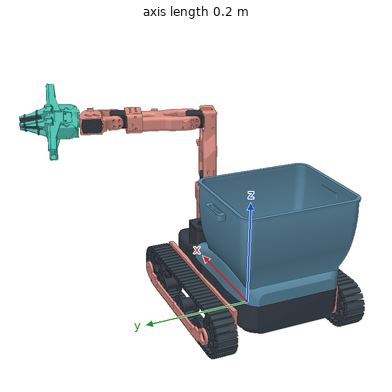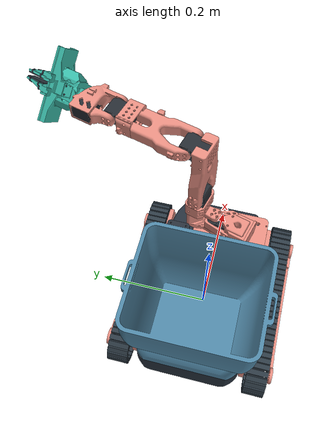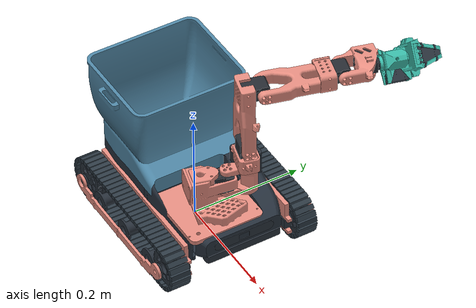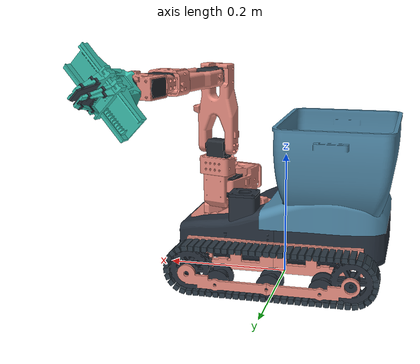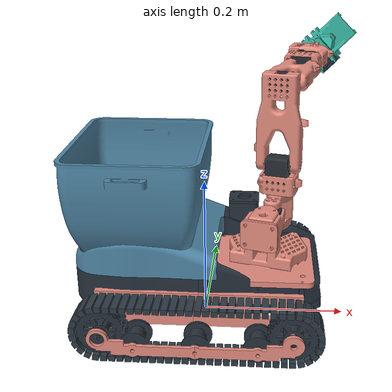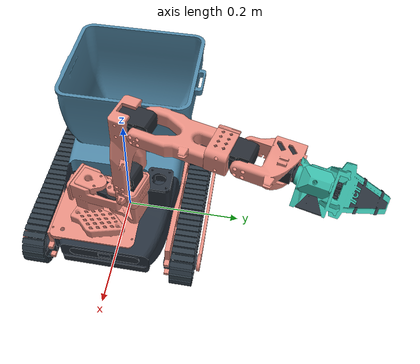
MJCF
<mujoco model="MOSS Jev V0.2 - robot only">
  <compiler angle="radian" autolimits="true" meshdir="meshes" />
  <option timestep="0.002" integrator="implicitfast" cone="elliptic" iterations="80" />
  <default>
    <joint damping="0.15" armature="0.015" />
    <geom friction="0.9 0.005 0.0001" solref="0.008 1" solimp="0.95 0.99 0.001" condim="4" />
  </default>
  <worldbody>
    <body name="rover">
      <joint name="base_x" type="slide" axis="1 0 0" range="0 .8" damping="40" />
      <geom name="hull" type="box" pos="-0.015 0 0.065" size="0.13 0.093 0.035" rgba="0.2 0.3 0.4 0" group="3" />
      <geom name="track_-1" type="box" pos="0 -0.122 0.049" size="0.14 0.019 0.045" rgba="0.2 0.3 0.4 0" group="3" />
      <geom name="track_1" type="box" pos="0 0.122 0.049" size="0.14 0.019 0.045" rgba="0.2 0.3 0.4 0" group="3" />
      <geom name="bin_floor" type="box" pos="-0.087 0 0.1102" size="0.077 0.096 0.002" rgba="0.2 0.3 0.4 0" group="3" />
      <geom name="bin_x-1" type="box" pos="-0.168 0 0.186" size="0.003 0.11 0.075" rgba="0.2 0.3 0.4 0" euler="0 -0.096 0" group="3" />
      <geom name="bin_y-1" type="box" pos="-0.087 -0.1 0.186" size="0.09 0.003 0.075" rgba="0.2 0.3 0.4 0" euler="0.092 0 0" group="3" />
      <geom name="bin_x1" type="box" pos="-0.006 0 0.186" size="0.003 0.11 0.075" rgba="0.2 0.3 0.4 0" euler="0 0.096 0" group="3" />
      <geom name="bin_y1" type="box" pos="-0.087 0.1 0.186" size="0.09 0.003 0.075" rgba="0.2 0.3 0.4 0" euler="-0.092 0 0" group="3" />
      <body name="base_link" pos=".085 -.03 .1004" euler="0 0 1.308996939">
        <body name="shoulder_link" pos="0.0388353 -8.97657e-09 0.0624" quat="1.76036379e-12 1.3267949e-06 -1 -1.3267949e-06">
          <joint name="shoulder_pan" axis="0 0 1" range="-1.91986 1.91986" />
          <body name="upper_arm_link" pos="-0.0303992 -0.0182778 -0.0542" quat="0.499998163 -0.5 -0.5 -0.500001837">
            <joint name="shoulder_lift" axis="0 0 1" range="-1.74533 1.74533" />
            <body name="lower_arm_link" pos="-0.11257 -0.028 1.73763e-16" quat="0.707105483 -4.37667256e-16 1.80556438e-16 0.70710808">
              <joint name="elbow_flex" axis="0 0 1" range="-1.69 1.69" />
              <body name="wrist_link" pos="-0.1349 0.0052 3.62355e-17" quat="0.707105483 1.72955356e-15 -1.11624123e-15 -0.70710808">
                <joint name="wrist_flex" axis="0 0 1" range="-1.65806 1.65806" />
                <body name="gripper_link" pos="5.55112e-17 -0.0611 0.0181" quat="0.0172100725 -0.0172081335 0.706898659 0.706896017">
                  <joint name="wrist_roll" axis="0 0 1" range="-2.74385 2.84121" />
                  <body name="gripper_frame_link" pos="-0.0079 -0.000218121 -0.0981274" quat="1.3267949e-06 0 1 0">
                    <geom name="palm" type="box" pos="-0.0079 0.000218 -0.059" euler="0 0 0.722112186" size=".060 .017 .008" mass=".1" rgba="0.2 0.3 0.4 0" contype="2" conaffinity="1" group="3" />
                    <geom name="gripper_mount" type="box" pos="-0.0079 0.000218 -0.08" size=".018 .017 .018" mass=".05" rgba="0.2 0.3 0.4 0" contype="2" conaffinity="1" group="3" />
                    <site name="tcp" pos="-0.0079 0.000218 -0.014" size=".002" />
                    <body name="finger_left" pos="-0.00189670952 0.00550576923 0">
                      <joint name="finger_left" type="slide" axis="0.75041131 0.660971154 0" range="0 .041" damping="2" armature=".002" />
                      <geom name="pad_left" type="box" pos="0 0 -.014" euler="0 0 0.722112186" size=".004 .015 .018" mass=".025" friction="1.4 .01 .001" rgba="0.2 0.3 0.4 0" contype="2" conaffinity="1" group="3" />
                      <inertial mass="0.025" pos="0.0 0.0 -0.014" quat="0.9355242674772614 0.0 0.0 0.3532624307241481" diaginertia="4.575e-06 2.8333333333333335e-06 2.0083333333333337e-06" />
                      <geom name="visual_grip_133" type="mesh" mesh="visual_grip_133" rgba="0.22745098039215686 0.7372549019607844 0.6666666666666666 1.0" contype="0" conaffinity="0" group="2" mass="0" />
                      <geom name="visual_grip_159" type="mesh" mesh="visual_grip_159" rgba="0.17647058823529413 0.21176470588235294 0.24705882352941178 1.0" contype="0" conaffinity="0" group="2" mass="0" />
                    </body>
                    <body name="finger_right" pos="-0.0139032905 -0.00506976923 0">
                      <joint name="finger_right" type="slide" axis="-0.75041131 -0.660971154 -0" range="0 .041" damping="2" armature=".002" />
                      <geom name="pad_right" type="box" pos="0 0 -.014" euler="0 0 0.722112186" size=".004 .015 .018" mass=".025" friction="1.4 .01 .001" rgba="0.2 0.3 0.4 0" contype="2" conaffinity="1" group="3" />
                      <inertial mass="0.025" pos="0.0 0.0 -0.014" quat="0.9355242674772614 0.0 0.0 0.3532624307241481" diaginertia="4.575e-06 2.8333333333333335e-06 2.0083333333333337e-06" />
                      <geom name="visual_grip_134" type="mesh" mesh="visual_grip_134" rgba="0.22745098039215686 0.7372549019607844 0.6666666666666666 1.0" contype="0" conaffinity="0" group="2" mass="0" />
                      <geom name="visual_grip_160" type="mesh" mesh="visual_grip_160" rgba="0.17647058823529413 0.21176470588235294 0.24705882352941178 1.0" contype="0" conaffinity="0" group="2" mass="0" />
                    </body>
                    <inertial mass="0.15000000000000002" pos="-0.0079 0.00021799999999999999 -0.06599999999999999" quat="0.29197475721239935 0.29197475721239935 0.6440114448911306 0.6440114448911306" diaginertia="0.00014737924299075433 0.00013984999999999996 3.693742367591231e-05" />
                    <geom name="visual_grip_132" type="mesh" mesh="visual_grip_132" rgba="0.22745098039215686 0.7372549019607844 0.6666666666666666 1.0" contype="0" conaffinity="0" group="2" mass="0" />
                    <geom name="visual_grip_135" type="mesh" mesh="visual_grip_135" rgba="0.17647058823529413 0.21176470588235294 0.24705882352941178 1.0" contype="0" conaffinity="0" group="2" mass="0" />
                    <geom name="visual_grip_136" type="mesh" mesh="visual_grip_136" rgba="0.22745098039215686 0.7372549019607844 0.6666666666666666 1.0" contype="0" conaffinity="0" group="2" mass="0" />
                    <geom name="visual_grip_137" type="mesh" mesh="visual_grip_137" rgba="0.17647058823529413 0.21176470588235294 0.24705882352941178 1.0" contype="0" conaffinity="0" group="2" mass="0" />
                    <geom name="visual_grip_141" type="mesh" mesh="visual_grip_141" rgba="0.17647058823529413 0.21176470588235294 0.24705882352941178 1.0" contype="0" conaffinity="0" group="2" mass="0" />
                    <geom name="visual_grip_144" type="mesh" mesh="visual_grip_144" rgba="0.22745098039215686 0.7372549019607844 0.6666666666666666 1.0" contype="0" conaffinity="0" group="2" mass="0" />
                  </body>
                  <inertial pos="0.000213627 0.000245138 -0.025187" mass="0.087" fullinertia="2.75087e-05 4.33657e-05 3.45059e-05 -3.35241e-07 -5.7352e-06 -5.17847e-08" />
                </body>
                <inertial pos="-0.000103312 -0.0386143 0.0281156" mass="0.079" fullinertia="3.68263e-05 2.5391e-05 2.1e-05 1.7893e-08 -5.28128e-08 3.6412e-06" />
                <geom name="wrist_link_proxy" type="capsule" fromto="0 0 0 5.55112e-17 -0.0611 0.0181" size=".013" contype="2" conaffinity="1" group="3" rgba="0.2 0.3 0.4 0" />
                <geom name="visual_wrist_link_0" type="mesh" mesh="visual_wrist_link_0" rgba="0.14901960784313725 0.16862745098039217 0.19607843137254902 1.0" contype="0" conaffinity="0" group="2" mass="0" />
                <geom name="visual_wrist_link_1" type="mesh" mesh="visual_wrist_link_1" rgba="0.8980392156862745 0.5529411764705883 0.5019607843137255 1.0" contype="0" conaffinity="0" group="2" mass="0" />
              </body>
              <inertial pos="-0.0980701 0.00324376 0.0182831" mass="0.104" fullinertia="2.87438e-05 0.000159844 0.00014529 7.41152e-06 1.26409e-06 -4.90188e-08" />
              <geom name="lower_arm_link_proxy" type="capsule" fromto="0 0 0 -0.1349 0.0052 3.62355e-17" size=".013" contype="2" conaffinity="1" group="3" rgba="0.2 0.3 0.4 0" />
              <geom name="visual_lower_arm_link_0" type="mesh" mesh="visual_lower_arm_link_0" rgba="0.8980392156862745 0.5529411764705883 0.5019607843137255 1.0" contype="0" conaffinity="0" group="2" mass="0" />
              <geom name="visual_lower_arm_link_1" type="mesh" mesh="visual_lower_arm_link_1" rgba="0.8980392156862745 0.5529411764705883 0.5019607843137255 1.0" contype="0" conaffinity="0" group="2" mass="0" />
              <geom name="visual_lower_arm_link_2" type="mesh" mesh="visual_lower_arm_link_2" rgba="0.14901960784313725 0.16862745098039217 0.19607843137254902 1.0" contype="0" conaffinity="0" group="2" mass="0" />
            </body>
            <inertial pos="-0.0898471 -0.00838224 0.0184089" mass="0.103" fullinertia="4.08002e-05 0.000147318 0.000142487 -1.97819e-05 -4.03016e-08 8.97326e-09" />
            <geom name="upper_arm_link_proxy" type="capsule" fromto="0 0 0 -0.11257 -0.028 1.73763e-16" size=".013" contype="2" conaffinity="1" group="3" rgba="0.2 0.3 0.4 0" />
            <geom name="visual_upper_arm_link_0" type="mesh" mesh="visual_upper_arm_link_0" rgba="0.14901960784313725 0.16862745098039217 0.19607843137254902 1.0" contype="0" conaffinity="0" group="2" mass="0" />
            <geom name="visual_upper_arm_link_1" type="mesh" mesh="visual_upper_arm_link_1" rgba="0.8980392156862745 0.5529411764705883 0.5019607843137255 1.0" contype="0" conaffinity="0" group="2" mass="0" />
          </body>
          <inertial pos="-0.0307604 -1.66727e-05 -0.0252713" mass="0.100006" fullinertia="8.3759e-05 8.10403e-05 2.39783e-05 7.55525e-08 -1.16342e-06 1.54663e-07" />
          <geom name="shoulder_link_proxy" type="capsule" fromto="0 0 0 -0.0303992 -0.0182778 -0.0542" size=".013" contype="2" conaffinity="1" group="3" rgba="0.2 0.3 0.4 0" />
          <geom name="visual_shoulder_link_0" type="mesh" mesh="visual_shoulder_link_0" rgba="0.14901960784313725 0.16862745098039217 0.19607843137254902 1.0" contype="0" conaffinity="0" group="2" mass="0" />
          <geom name="visual_shoulder_link_1" type="mesh" mesh="visual_shoulder_link_1" rgba="0.8980392156862745 0.5529411764705883 0.5019607843137255 1.0" contype="0" conaffinity="0" group="2" mass="0" />
          <geom name="visual_shoulder_link_2" type="mesh" mesh="visual_shoulder_link_2" rgba="0.8980392156862745 0.5529411764705883 0.5019607843137255 1.0" contype="0" conaffinity="0" group="2" mass="0" />
        </body>
        <inertial pos="0.0137179 -5.19711e-05 0.0334843" mass="0.147" fullinertia="0.000114686 0.000136117 0.000130364 -4.59787e-07 4.97151e-06 9.75275e-08" />
        <geom name="visual_base_link_0" type="mesh" mesh="visual_base_link_0" rgba="0.8980392156862745 0.5529411764705883 0.5019607843137255 1.0" contype="0" conaffinity="0" group="2" mass="0" />
        <geom name="visual_base_link_1" type="mesh" mesh="visual_base_link_1" rgba="0.8980392156862745 0.5529411764705883 0.5019607843137255 1.0" contype="0" conaffinity="0" group="2" mass="0" />
        <geom name="visual_base_link_2" type="mesh" mesh="visual_base_link_2" rgba="0.14901960784313725 0.16862745098039217 0.19607843137254902 1.0" contype="0" conaffinity="0" group="2" mass="0" />
        <geom name="visual_base_link_3" type="mesh" mesh="visual_base_link_3" rgba="0.8980392156862745 0.5529411764705883 0.5019607843137255 1.0" contype="0" conaffinity="0" group="2" mass="0" />
      </body>
      <inertial mass="6.1386720000000015" pos="-0.020152186661870835 9.377445777655876e-19 0.07507102096349176" quat="0.5577883299535182 0.5577883299535182 -0.43459426936818507 0.43459426936818507" diaginertia="0.0853277136911578 0.056652169661549505 0.05457497621354487" />
      <geom name="visual_body_1" type="mesh" mesh="visual_body_1" rgba="0.14901960784313725 0.18823529411764706 0.23529411764705882 1.0" contype="0" conaffinity="0" group="2" mass="0" />
      <geom name="visual_body_10" type="mesh" mesh="visual_body_10" rgba="0.8980392156862745 0.5529411764705883 0.5019607843137255 1.0" contype="0" conaffinity="0" group="2" mass="0" />
      <geom name="visual_body_11" type="mesh" mesh="visual_body_11" rgba="0.1568627450980392 0.18823529411764706 0.22745098039215686 1.0" contype="0" conaffinity="0" group="2" mass="0" />
      <geom name="visual_body_12" type="mesh" mesh="visual_body_12" rgba="0.1568627450980392 0.18823529411764706 0.22745098039215686 1.0" contype="0" conaffinity="0" group="2" mass="0" />
      <geom name="visual_body_13" type="mesh" mesh="visual_body_13" rgba="0.1568627450980392 0.18823529411764706 0.22745098039215686 1.0" contype="0" conaffinity="0" group="2" mass="0" />
      <geom name="visual_body_14" type="mesh" mesh="visual_body_14" rgba="0.1568627450980392 0.18823529411764706 0.22745098039215686 1.0" contype="0" conaffinity="0" group="2" mass="0" />
      <geom name="visual_body_15" type="mesh" mesh="visual_body_15" rgba="0.1568627450980392 0.18823529411764706 0.22745098039215686 1.0" contype="0" conaffinity="0" group="2" mass="0" />
      <geom name="visual_body_16" type="mesh" mesh="visual_body_16" rgba="0.1568627450980392 0.18823529411764706 0.22745098039215686 1.0" contype="0" conaffinity="0" group="2" mass="0" />
      <geom name="visual_body_17" type="mesh" mesh="visual_body_17" rgba="0.1568627450980392 0.18823529411764706 0.22745098039215686 1.0" contype="0" conaffinity="0" group="2" mass="0" />
      <geom name="visual_body_18" type="mesh" mesh="visual_body_18" rgba="0.1568627450980392 0.18823529411764706 0.22745098039215686 1.0" contype="0" conaffinity="0" group="2" mass="0" />
      <geom name="visual_body_19" type="mesh" mesh="visual_body_19" rgba="0.8980392156862745 0.5529411764705883 0.5019607843137255 1.0" contype="0" conaffinity="0" group="2" mass="0" />
      <geom name="visual_body_2" type="mesh" mesh="visual_body_2" rgba="0.14901960784313725 0.18823529411764706 0.23529411764705882 1.0" contype="0" conaffinity="0" group="2" mass="0" />
      <geom name="visual_body_20" type="mesh" mesh="visual_body_20" rgba="0.8980392156862745 0.5529411764705883 0.5019607843137255 1.0" contype="0" conaffinity="0" group="2" mass="0" />
      <geom name="visual_body_21" type="mesh" mesh="visual_body_21" rgba="0.1568627450980392 0.18823529411764706 0.22745098039215686 1.0" contype="0" conaffinity="0" group="2" mass="0" />
      <geom name="visual_body_22" type="mesh" mesh="visual_body_22" rgba="0.1568627450980392 0.18823529411764706 0.22745098039215686 1.0" contype="0" conaffinity="0" group="2" mass="0" />
      <geom name="visual_body_23" type="mesh" mesh="visual_body_23" rgba="0.1568627450980392 0.18823529411764706 0.22745098039215686 1.0" contype="0" conaffinity="0" group="2" mass="0" />
      <geom name="visual_body_24" type="mesh" mesh="visual_body_24" rgba="0.1568627450980392 0.18823529411764706 0.22745098039215686 1.0" contype="0" conaffinity="0" group="2" mass="0" />
      <geom name="visual_body_25" type="mesh" mesh="visual_body_25" rgba="0.1568627450980392 0.18823529411764706 0.22745098039215686 1.0" contype="0" conaffinity="0" group="2" mass="0" />
      <geom name="visual_body_26" type="mesh" mesh="visual_body_26" rgba="0.1568627450980392 0.18823529411764706 0.22745098039215686 1.0" contype="0" conaffinity="0" group="2" mass="0" />
      <geom name="visual_body_27" type="mesh" mesh="visual_body_27" rgba="0.1568627450980392 0.18823529411764706 0.22745098039215686 1.0" contype="0" conaffinity="0" group="2" mass="0" />
      <geom name="visual_body_28" type="mesh" mesh="visual_body_28" rgba="0.1568627450980392 0.18823529411764706 0.22745098039215686 1.0" contype="0" conaffinity="0" group="2" mass="0" />
      <geom name="visual_body_31" type="mesh" mesh="visual_body_31" rgba="0.30980392156862746 0.5294117647058824 0.6509803921568628 1.0" contype="0" conaffinity="0" group="2" mass="0" />
      <geom name="visual_body_32" type="mesh" mesh="visual_body_32" rgba="0.1568627450980392 0.18823529411764706 0.22745098039215686 1.0" contype="0" conaffinity="0" group="2" mass="0" />
      <geom name="visual_body_35" type="mesh" mesh="visual_body_35" rgba="0.1568627450980392 0.18823529411764706 0.22745098039215686 1.0" contype="0" conaffinity="0" group="2" mass="0" />
      <geom name="visual_body_36" type="mesh" mesh="visual_body_36" rgba="0.30980392156862746 0.5294117647058824 0.6509803921568628 1.0" contype="0" conaffinity="0" group="2" mass="0" />
      <geom name="visual_body_4" type="mesh" mesh="visual_body_4" rgba="0.8980392156862745 0.5529411764705883 0.5019607843137255 1.0" contype="0" conaffinity="0" group="2" mass="0" />
      <geom name="visual_body_44" type="mesh" mesh="visual_body_44" rgba="0.8980392156862745 0.5529411764705883 0.5019607843137255 1.0" contype="0" conaffinity="0" group="2" mass="0" />
      <geom name="visual_body_45" type="mesh" mesh="visual_body_45" rgba="0.8980392156862745 0.5529411764705883 0.5019607843137255 1.0" contype="0" conaffinity="0" group="2" mass="0" />
      <geom name="visual_body_50" type="mesh" mesh="visual_body_50" rgba="0.8980392156862745 0.5529411764705883 0.5019607843137255 1.0" contype="0" conaffinity="0" group="2" mass="0" />
      <geom name="visual_body_51" type="mesh" mesh="visual_body_51" rgba="0.8980392156862745 0.5529411764705883 0.5019607843137255 1.0" contype="0" conaffinity="0" group="2" mass="0" />
      <geom name="visual_body_55" type="mesh" mesh="visual_body_55" rgba="0.1568627450980392 0.18823529411764706 0.22745098039215686 1.0" contype="0" conaffinity="0" group="2" mass="0" />
      <geom name="visual_body_56" type="mesh" mesh="visual_body_56" rgba="0.1568627450980392 0.18823529411764706 0.22745098039215686 1.0" contype="0" conaffinity="0" group="2" mass="0" />
      <geom name="visual_body_9" type="mesh" mesh="visual_body_9" rgba="0.8980392156862745 0.5529411764705883 0.5019607843137255 1.0" contype="0" conaffinity="0" group="2" mass="0" />
      <geom name="tread_-1_0" type="box" size=".00425 .018 .004" pos="-0.125 -0.121 0.077" euler="0 0 0" rgba=".18 .23 .27 1" contype="0" conaffinity="0" group="2" mass="0" />
      <geom name="tread_-1_1" type="box" size=".00425 .018 .004" pos="-0.1143206666020814 -0.121 0.077" euler="0 0 0" rgba=".18 .23 .27 1" contype="0" conaffinity="0" group="2" mass="0" />
      <geom name="tread_-1_2" type="box" size=".00425 .018 .004" pos="-0.1036413332041628 -0.121 0.077" euler="0 0 0" rgba=".18 .23 .27 1" contype="0" conaffinity="0" group="2" mass="0" />
      <geom name="tread_-1_3" type="box" size=".00425 .018 .004" pos="-0.09296199980624419 -0.121 0.077" euler="0 0 0" rgba=".18 .23 .27 1" contype="0" conaffinity="0" group="2" mass="0" />
      <geom name="tread_-1_4" type="box" size=".00425 .018 .004" pos="-0.08228266640832559 -0.121 0.077" euler="0 0 0" rgba=".18 .23 .27 1" contype="0" conaffinity="0" group="2" mass="0" />
      <geom name="tread_-1_5" type="box" size=".00425 .018 .004" pos="-0.07160333301040697 -0.121 0.077" euler="0 0 0" rgba=".18 .23 .27 1" contype="0" conaffinity="0" group="2" mass="0" />
      <geom name="tread_-1_6" type="box" size=".00425 .018 .004" pos="-0.06092399961248837 -0.121 0.077" euler="0 0 0" rgba=".18 .23 .27 1" contype="0" conaffinity="0" group="2" mass="0" />
      <geom name="tread_-1_7" type="box" size=".00425 .018 .004" pos="-0.050244666214569786 -0.121 0.077" euler="0 0 0" rgba=".18 .23 .27 1" contype="0" conaffinity="0" group="2" mass="0" />
      <geom name="tread_-1_8" type="box" size=".00425 .018 .004" pos="-0.03956533281665117 -0.121 0.077" euler="0 0 0" rgba=".18 .23 .27 1" contype="0" conaffinity="0" group="2" mass="0" />
      <geom name="tread_-1_9" type="box" size=".00425 .018 .004" pos="-0.028885999418732572 -0.121 0.077" euler="0 0 0" rgba=".18 .23 .27 1" contype="0" conaffinity="0" group="2" mass="0" />
      <geom name="tread_-1_10" type="box" size=".00425 .018 .004" pos="-0.018206666020813958 -0.121 0.077" euler="0 0 0" rgba=".18 .23 .27 1" contype="0" conaffinity="0" group="2" mass="0" />
      <geom name="tread_-1_11" type="box" size=".00425 .018 .004" pos="-0.007527332622895358 -0.121 0.077" euler="0 0 0" rgba=".18 .23 .27 1" contype="0" conaffinity="0" group="2" mass="0" />
      <geom name="tread_-1_12" type="box" size=".00425 .018 .004" pos="0.003152000775023256 -0.121 0.077" euler="0 0 0" rgba=".18 .23 .27 1" contype="0" conaffinity="0" group="2" mass="0" />
      <geom name="tread_-1_13" type="box" size=".00425 .018 .004" pos="0.013831334172941828 -0.121 0.077" euler="0 0 0" rgba=".18 .23 .27 1" contype="0" conaffinity="0" group="2" mass="0" />
      <geom name="tread_-1_14" type="box" size=".00425 .018 .004" pos="0.024510667570860428 -0.121 0.077" euler="0 0 0" rgba=".18 .23 .27 1" contype="0" conaffinity="0" group="2" mass="0" />
      <geom name="tread_-1_15" type="box" size=".00425 .018 .004" pos="0.035190000968779056 -0.121 0.077" euler="0 0 0" rgba=".18 .23 .27 1" contype="0" conaffinity="0" group="2" mass="0" />
      <geom name="tread_-1_16" type="box" size=".00425 .018 .004" pos="0.045869334366697656 -0.121 0.077" euler="0 0 0" rgba=".18 .23 .27 1" contype="0" conaffinity="0" group="2" mass="0" />
      <geom name="tread_-1_17" type="box" size=".00425 .018 .004" pos="0.056548667764616256 -0.121 0.077" euler="0 0 0" rgba=".18 .23 .27 1" contype="0" conaffinity="0" group="2" mass="0" />
      <geom name="tread_-1_18" type="box" size=".00425 .018 .004" pos="0.06722800116253486 -0.121 0.077" euler="0 0 0" rgba=".18 .23 .27 1" contype="0" conaffinity="0" group="2" mass="0" />
      <geom name="tread_-1_19" type="box" size=".00425 .018 .004" pos="0.07790733456045346 -0.121 0.077" euler="0 0 0" rgba=".18 .23 .27 1" contype="0" conaffinity="0" group="2" mass="0" />
      <geom name="tread_-1_20" type="box" size=".00425 .018 .004" pos="0.08858666795837208 -0.121 0.077" euler="0 0 0" rgba=".18 .23 .27 1" contype="0" conaffinity="0" group="2" mass="0" />
      <geom name="tread_-1_21" type="box" size=".00425 .018 .004" pos="0.09926600135629068 -0.121 0.077" euler="0 0 0" rgba=".18 .23 .27 1" contype="0" conaffinity="0" group="2" mass="0" />
      <geom name="tread_-1_22" type="box" size=".00425 .018 .004" pos="0.10994533475420928 -0.121 0.077" euler="0 0 0" rgba=".18 .23 .27 1" contype="0" conaffinity="0" group="2" mass="0" />
      <geom name="tread_-1_23" type="box" size=".00425 .018 .004" pos="0.12062466815212788 -0.121 0.077" euler="0 0 0" rgba=".18 .23 .27 1" contype="0" conaffinity="0" group="2" mass="0" />
      <geom name="tread_-1_24" type="box" size=".00425 .018 .004" pos="0.13127183334716822 -0.121 0.07644945847915521" euler="0 0.17511115416795864 0" rgba=".18 .23 .27 1" contype="0" conaffinity="0" group="2" mass="0" />
      <geom name="tread_-1_25" type="box" size=".00425 .018 .004" pos="0.14136034844413845 -0.121 0.07306772518883085" euler="0 0.471759304110142 0" rgba=".18 .23 .27 1" contype="0" conaffinity="0" group="2" mass="0" />
      <geom name="tread_-1_26" type="box" size=".00425 .018 .004" pos="0.15001967782207293 -0.121 0.06688466190004558" euler="0 0.7684074540523238 0" rgba=".18 .23 .27 1" contype="0" conaffinity="0" group="2" mass="0" />
      <geom name="tread_-1_27" type="box" size=".00425 .018 .004" pos="0.1564933712179699 -0.121 0.058440400492166006" euler="0 1.0650556039945072 0" rgba=".18 .23 .27 1" contype="0" conaffinity="0" group="2" mass="0" />
      <geom name="tread_-1_28" type="box" size=".00425 .018 .004" pos="0.1602159082712806 -0.121 0.04847260360441727" euler="0 1.3617037539366905 0" rgba=".18 .23 .27 1" contype="0" conaffinity="0" group="2" mass="0" />
      <geom name="tread_-1_29" type="box" size=".00425 .018 .004" pos="0.16086210050491737 -0.121 0.03785202487697157" euler="0 1.6583519038788739 0" rgba=".18 .23 .27 1" contype="0" conaffinity="0" group="2" mass="0" />
      <geom name="tread_-1_30" type="box" size=".00425 .018 .004" pos="0.158375498710893 -0.121 0.027506442804094255" euler="0 1.9550000538210588 0" rgba=".18 .23 .27 1" contype="0" conaffinity="0" group="2" mass="0" />
      <geom name="tread_-1_31" type="box" size=".00425 .018 .004" pos="0.1529733241657031 -0.121 0.018339613085375406" euler="0 2.251648203763242 0" rgba=".18 .23 .27 1" contype="0" conaffinity="0" group="2" mass="0" />
      <geom name="tread_-1_32" type="box" size=".00425 .018 .004" pos="0.14512749290084825 -0.121 0.011152319528541205" euler="0 2.5482963537054255 0" rgba=".18 .23 .27 1" contype="0" conaffinity="0" group="2" mass="0" />
      <geom name="tread_-1_33" type="box" size=".00425 .018 .004" pos="0.13552339068521843 -0.121 0.006572420234842856" euler="0 2.844944503647609 0" rgba=".18 .23 .27 1" contype="0" conaffinity="0" group="2" mass="0" />
      <geom name="tread_-1_34" type="box" size=".00425 .018 .004" pos="0.12500000000000003 -0.121 0.0050000000000000044" euler="0 0 0" rgba=".18 .23 .27 1" contype="0" conaffinity="0" group="2" mass="0" />
      <geom name="tread_-1_35" type="box" size=".00425 .018 .004" pos="0.11432066660208148 -0.121 0.0050000000000000044" euler="0 0 0" rgba=".18 .23 .27 1" contype="0" conaffinity="0" group="2" mass="0" />
      <geom name="tread_-1_36" type="box" size=".00425 .018 .004" pos="0.10364133320416283 -0.121 0.0050000000000000044" euler="0 0 0" rgba=".18 .23 .27 1" contype="0" conaffinity="0" group="2" mass="0" />
      <geom name="tread_-1_37" type="box" size=".00425 .018 .004" pos="0.09296199980624423 -0.121 0.0050000000000000044" euler="0 0 0" rgba=".18 .23 .27 1" contype="0" conaffinity="0" group="2" mass="0" />
      <geom name="tread_-1_38" type="box" size=".00425 .018 .004" pos="0.08228266640832563 -0.121 0.0050000000000000044" euler="0 0 0" rgba=".18 .23 .27 1" contype="0" conaffinity="0" group="2" mass="0" />
      <geom name="tread_-1_39" type="box" size=".00425 .018 .004" pos="0.07160333301040703 -0.121 0.0050000000000000044" euler="0 0 0" rgba=".18 .23 .27 1" contype="0" conaffinity="0" group="2" mass="0" />
      <geom name="tread_-1_40" type="box" size=".00425 .018 .004" pos="0.06092399961248837 -0.121 0.0050000000000000044" euler="0 0 0" rgba=".18 .23 .27 1" contype="0" conaffinity="0" group="2" mass="0" />
      <geom name="tread_-1_41" type="box" size=".00425 .018 .004" pos="0.05024466621456983 -0.121 0.0050000000000000044" euler="0 0 0" rgba=".18 .23 .27 1" contype="0" conaffinity="0" group="2" mass="0" />
      <geom name="tread_-1_42" type="box" size=".00425 .018 .004" pos="0.03956533281665117 -0.121 0.0050000000000000044" euler="0 0 0" rgba=".18 .23 .27 1" contype="0" conaffinity="0" group="2" mass="0" />
      <geom name="tread_-1_43" type="box" size=".00425 .018 .004" pos="0.028885999418732627 -0.121 0.0050000000000000044" euler="0 0 0" rgba=".18 .23 .27 1" contype="0" conaffinity="0" group="2" mass="0" />
      <geom name="tread_-1_44" type="box" size=".00425 .018 .004" pos="0.018206666020813972 -0.121 0.0050000000000000044" euler="0 0 0" rgba=".18 .23 .27 1" contype="0" conaffinity="0" group="2" mass="0" />
      <geom name="tread_-1_45" type="box" size=".00425 .018 .004" pos="0.007527332622895427 -0.121 0.0050000000000000044" euler="0 0 0" rgba=".18 .23 .27 1" contype="0" conaffinity="0" group="2" mass="0" />
      <geom name="tread_-1_46" type="box" size=".00425 .018 .004" pos="-0.003152000775023228 -0.121 0.0050000000000000044" euler="0 0 0" rgba=".18 .23 .27 1" contype="0" conaffinity="0" group="2" mass="0" />
      <geom name="tread_-1_47" type="box" size=".00425 .018 .004" pos="-0.013831334172941773 -0.121 0.0050000000000000044" euler="0 0 0" rgba=".18 .23 .27 1" contype="0" conaffinity="0" group="2" mass="0" />
      <geom name="tread_-1_48" type="box" size=".00425 .018 .004" pos="-0.024510667570860484 -0.121 0.0050000000000000044" euler="0 0 0" rgba=".18 .23 .27 1" contype="0" conaffinity="0" group="2" mass="0" />
      <geom name="tread_-1_49" type="box" size=".00425 .018 .004" pos="-0.03519000096877897 -0.121 0.0050000000000000044" euler="0 0 0" rgba=".18 .23 .27 1" contype="0" conaffinity="0" group="2" mass="0" />
      <geom name="tread_-1_50" type="box" size=".00425 .018 .004" pos="-0.045869334366697684 -0.121 0.0050000000000000044" euler="0 0 0" rgba=".18 .23 .27 1" contype="0" conaffinity="0" group="2" mass="0" />
      <geom name="tread_-1_51" type="box" size=".00425 .018 .004" pos="-0.05654866776461617 -0.121 0.0050000000000000044" euler="0 0 0" rgba=".18 .23 .27 1" contype="0" conaffinity="0" group="2" mass="0" />
      <geom name="tread_-1_52" type="box" size=".00425 .018 .004" pos="-0.06722800116253477 -0.121 0.0050000000000000044" euler="0 0 0" rgba=".18 .23 .27 1" contype="0" conaffinity="0" group="2" mass="0" />
      <geom name="tread_-1_53" type="box" size=".00425 .018 .004" pos="-0.07790733456045348 -0.121 0.0050000000000000044" euler="0 0 0" rgba=".18 .23 .27 1" contype="0" conaffinity="0" group="2" mass="0" />
      <geom name="tread_-1_54" type="box" size=".00425 .018 .004" pos="-0.08858666795837197 -0.121 0.0050000000000000044" euler="0 0 0" rgba=".18 .23 .27 1" contype="0" conaffinity="0" group="2" mass="0" />
      <geom name="tread_-1_55" type="box" size=".00425 .018 .004" pos="-0.09926600135629068 -0.121 0.0050000000000000044" euler="0 0 0" rgba=".18 .23 .27 1" contype="0" conaffinity="0" group="2" mass="0" />
      <geom name="tread_-1_56" type="box" size=".00425 .018 .004" pos="-0.10994533475420917 -0.121 0.0050000000000000044" euler="0 0 0" rgba=".18 .23 .27 1" contype="0" conaffinity="0" group="2" mass="0" />
      <geom name="tread_-1_57" type="box" size=".00425 .018 .004" pos="-0.12062466815212788 -0.121 0.0050000000000000044" euler="0 0 0" rgba=".18 .23 .27 1" contype="0" conaffinity="0" group="2" mass="0" />
      <geom name="tread_-1_58" type="box" size=".00425 .018 .004" pos="-0.13127183334716808 -0.121 0.005550541520844776" euler="0 3.316703807757748 0" rgba=".18 .23 .27 1" contype="0" conaffinity="0" group="2" mass="0" />
      <geom name="tread_-1_59" type="box" size=".00425 .018 .004" pos="-0.14136034844413842 -0.121 0.008932274811169136" euler="0 3.6133519576999342 0" rgba=".18 .23 .27 1" contype="0" conaffinity="0" group="2" mass="0" />
      <geom name="tread_-1_60" type="box" size=".00425 .018 .004" pos="-0.15001967782207296 -0.121 0.015115338099954433" euler="0 3.9100001076421176 0" rgba=".18 .23 .27 1" contype="0" conaffinity="0" group="2" mass="0" />
      <geom name="tread_-1_61" type="box" size=".00425 .018 .004" pos="-0.1564933712179699 -0.121 0.023559599507834015" euler="0 4.206648257584301 0" rgba=".18 .23 .27 1" contype="0" conaffinity="0" group="2" mass="0" />
      <geom name="tread_-1_62" type="box" size=".00425 .018 .004" pos="-0.16021590827128063 -0.121 0.033527396395582755" euler="0 4.503296407526484 0" rgba=".18 .23 .27 1" contype="0" conaffinity="0" group="2" mass="0" />
      <geom name="tread_-1_63" type="box" size=".00425 .018 .004" pos="-0.16086210050491737 -0.121 0.044147975123028455" euler="0 4.799944557468668 0" rgba=".18 .23 .27 1" contype="0" conaffinity="0" group="2" mass="0" />
      <geom name="tread_-1_64" type="box" size=".00425 .018 .004" pos="-0.15837549871089301 -0.121 0.05449355719590571" euler="0 5.096592707410851 0" rgba=".18 .23 .27 1" contype="0" conaffinity="0" group="2" mass="0" />
      <geom name="tread_-1_65" type="box" size=".00425 .018 .004" pos="-0.15297332416570314 -0.121 0.06366038691462457" euler="0 5.393240857353034 0" rgba=".18 .23 .27 1" contype="0" conaffinity="0" group="2" mass="0" />
      <geom name="tread_-1_66" type="box" size=".00425 .018 .004" pos="-0.14512749290084828 -0.121 0.07084768047145878" euler="0 5.689889007295218 0" rgba=".18 .23 .27 1" contype="0" conaffinity="0" group="2" mass="0" />
      <geom name="tread_-1_67" type="box" size=".00425 .018 .004" pos="-0.13552339068521846 -0.121 0.07542757976515713" euler="0 5.986537157237401 0" rgba=".18 .23 .27 1" contype="0" conaffinity="0" group="2" mass="0" />
      <geom name="tread_1_0" type="box" size=".00425 .018 .004" pos="-0.125 0.121 0.077" euler="0 0 0" rgba=".18 .23 .27 1" contype="0" conaffinity="0" group="2" mass="0" />
      <geom name="tread_1_1" type="box" size=".00425 .018 .004" pos="-0.1143206666020814 0.121 0.077" euler="0 0 0" rgba=".18 .23 .27 1" contype="0" conaffinity="0" group="2" mass="0" />
      <geom name="tread_1_2" type="box" size=".00425 .018 .004" pos="-0.1036413332041628 0.121 0.077" euler="0 0 0" rgba=".18 .23 .27 1" contype="0" conaffinity="0" group="2" mass="0" />
      <geom name="tread_1_3" type="box" size=".00425 .018 .004" pos="-0.09296199980624419 0.121 0.077" euler="0 0 0" rgba=".18 .23 .27 1" contype="0" conaffinity="0" group="2" mass="0" />
      <geom name="tread_1_4" type="box" size=".00425 .018 .004" pos="-0.08228266640832559 0.121 0.077" euler="0 0 0" rgba=".18 .23 .27 1" contype="0" conaffinity="0" group="2" mass="0" />
      <geom name="tread_1_5" type="box" size=".00425 .018 .004" pos="-0.07160333301040697 0.121 0.077" euler="0 0 0" rgba=".18 .23 .27 1" contype="0" conaffinity="0" group="2" mass="0" />
      <geom name="tread_1_6" type="box" size=".00425 .018 .004" pos="-0.06092399961248837 0.121 0.077" euler="0 0 0" rgba=".18 .23 .27 1" contype="0" conaffinity="0" group="2" mass="0" />
      <geom name="tread_1_7" type="box" size=".00425 .018 .004" pos="-0.050244666214569786 0.121 0.077" euler="0 0 0" rgba=".18 .23 .27 1" contype="0" conaffinity="0" group="2" mass="0" />
      <geom name="tread_1_8" type="box" size=".00425 .018 .004" pos="-0.03956533281665117 0.121 0.077" euler="0 0 0" rgba=".18 .23 .27 1" contype="0" conaffinity="0" group="2" mass="0" />
      <geom name="tread_1_9" type="box" size=".00425 .018 .004" pos="-0.028885999418732572 0.121 0.077" euler="0 0 0" rgba=".18 .23 .27 1" contype="0" conaffinity="0" group="2" mass="0" />
      <geom name="tread_1_10" type="box" size=".00425 .018 .004" pos="-0.018206666020813958 0.121 0.077" euler="0 0 0" rgba=".18 .23 .27 1" contype="0" conaffinity="0" group="2" mass="0" />
      <geom name="tread_1_11" type="box" size=".00425 .018 .004" pos="-0.007527332622895358 0.121 0.077" euler="0 0 0" rgba=".18 .23 .27 1" contype="0" conaffinity="0" group="2" mass="0" />
      <geom name="tread_1_12" type="box" size=".00425 .018 .004" pos="0.003152000775023256 0.121 0.077" euler="0 0 0" rgba=".18 .23 .27 1" contype="0" conaffinity="0" group="2" mass="0" />
      <geom name="tread_1_13" type="box" size=".00425 .018 .004" pos="0.013831334172941828 0.121 0.077" euler="0 0 0" rgba=".18 .23 .27 1" contype="0" conaffinity="0" group="2" mass="0" />
      <geom name="tread_1_14" type="box" size=".00425 .018 .004" pos="0.024510667570860428 0.121 0.077" euler="0 0 0" rgba=".18 .23 .27 1" contype="0" conaffinity="0" group="2" mass="0" />
      <geom name="tread_1_15" type="box" size=".00425 .018 .004" pos="0.035190000968779056 0.121 0.077" euler="0 0 0" rgba=".18 .23 .27 1" contype="0" conaffinity="0" group="2" mass="0" />
      <geom name="tread_1_16" type="box" size=".00425 .018 .004" pos="0.045869334366697656 0.121 0.077" euler="0 0 0" rgba=".18 .23 .27 1" contype="0" conaffinity="0" group="2" mass="0" />
      <geom name="tread_1_17" type="box" size=".00425 .018 .004" pos="0.056548667764616256 0.121 0.077" euler="0 0 0" rgba=".18 .23 .27 1" contype="0" conaffinity="0" group="2" mass="0" />
      <geom name="tread_1_18" type="box" size=".00425 .018 .004" pos="0.06722800116253486 0.121 0.077" euler="0 0 0" rgba=".18 .23 .27 1" contype="0" conaffinity="0" group="2" mass="0" />
      <geom name="tread_1_19" type="box" size=".00425 .018 .004" pos="0.07790733456045346 0.121 0.077" euler="0 0 0" rgba=".18 .23 .27 1" contype="0" conaffinity="0" group="2" mass="0" />
      <geom name="tread_1_20" type="box" size=".00425 .018 .004" pos="0.08858666795837208 0.121 0.077" euler="0 0 0" rgba=".18 .23 .27 1" contype="0" conaffinity="0" group="2" mass="0" />
      <geom name="tread_1_21" type="box" size=".00425 .018 .004" pos="0.09926600135629068 0.121 0.077" euler="0 0 0" rgba=".18 .23 .27 1" contype="0" conaffinity="0" group="2" mass="0" />
      <geom name="tread_1_22" type="box" size=".00425 .018 .004" pos="0.10994533475420928 0.121 0.077" euler="0 0 0" rgba=".18 .23 .27 1" contype="0" conaffinity="0" group="2" mass="0" />
      <geom name="tread_1_23" type="box" size=".00425 .018 .004" pos="0.12062466815212788 0.121 0.077" euler="0 0 0" rgba=".18 .23 .27 1" contype="0" conaffinity="0" group="2" mass="0" />
      <geom name="tread_1_24" type="box" size=".00425 .018 .004" pos="0.13127183334716822 0.121 0.07644945847915521" euler="0 0.17511115416795864 0" rgba=".18 .23 .27 1" contype="0" conaffinity="0" group="2" mass="0" />
      <geom name="tread_1_25" type="box" size=".00425 .018 .004" pos="0.14136034844413845 0.121 0.07306772518883085" euler="0 0.471759304110142 0" rgba=".18 .23 .27 1" contype="0" conaffinity="0" group="2" mass="0" />
      <geom name="tread_1_26" type="box" size=".00425 .018 .004" pos="0.15001967782207293 0.121 0.06688466190004558" euler="0 0.7684074540523238 0" rgba=".18 .23 .27 1" contype="0" conaffinity="0" group="2" mass="0" />
      <geom name="tread_1_27" type="box" size=".00425 .018 .004" pos="0.1564933712179699 0.121 0.058440400492166006" euler="0 1.0650556039945072 0" rgba=".18 .23 .27 1" contype="0" conaffinity="0" group="2" mass="0" />
      <geom name="tread_1_28" type="box" size=".00425 .018 .004" pos="0.1602159082712806 0.121 0.04847260360441727" euler="0 1.3617037539366905 0" rgba=".18 .23 .27 1" contype="0" conaffinity="0" group="2" mass="0" />
      <geom name="tread_1_29" type="box" size=".00425 .018 .004" pos="0.16086210050491737 0.121 0.03785202487697157" euler="0 1.6583519038788739 0" rgba=".18 .23 .27 1" contype="0" conaffinity="0" group="2" mass="0" />
      <geom name="tread_1_30" type="box" size=".00425 .018 .004" pos="0.158375498710893 0.121 0.027506442804094255" euler="0 1.9550000538210588 0" rgba=".18 .23 .27 1" contype="0" conaffinity="0" group="2" mass="0" />
      <geom name="tread_1_31" type="box" size=".00425 .018 .004" pos="0.1529733241657031 0.121 0.018339613085375406" euler="0 2.251648203763242 0" rgba=".18 .23 .27 1" contype="0" conaffinity="0" group="2" mass="0" />
      <geom name="tread_1_32" type="box" size=".00425 .018 .004" pos="0.14512749290084825 0.121 0.011152319528541205" euler="0 2.5482963537054255 0" rgba=".18 .23 .27 1" contype="0" conaffinity="0" group="2" mass="0" />
      <geom name="tread_1_33" type="box" size=".00425 .018 .004" pos="0.13552339068521843 0.121 0.006572420234842856" euler="0 2.844944503647609 0" rgba=".18 .23 .27 1" contype="0" conaffinity="0" group="2" mass="0" />
      <geom name="tread_1_34" type="box" size=".00425 .018 .004" pos="0.12500000000000003 0.121 0.0050000000000000044" euler="0 0 0" rgba=".18 .23 .27 1" contype="0" conaffinity="0" group="2" mass="0" />
      <geom name="tread_1_35" type="box" size=".00425 .018 .004" pos="0.11432066660208148 0.121 0.0050000000000000044" euler="0 0 0" rgba=".18 .23 .27 1" contype="0" conaffinity="0" group="2" mass="0" />
      <geom name="tread_1_36" type="box" size=".00425 .018 .004" pos="0.10364133320416283 0.121 0.0050000000000000044" euler="0 0 0" rgba=".18 .23 .27 1" contype="0" conaffinity="0" group="2" mass="0" />
      <geom name="tread_1_37" type="box" size=".00425 .018 .004" pos="0.09296199980624423 0.121 0.0050000000000000044" euler="0 0 0" rgba=".18 .23 .27 1" contype="0" conaffinity="0" group="2" mass="0" />
      <geom name="tread_1_38" type="box" size=".00425 .018 .004" pos="0.08228266640832563 0.121 0.0050000000000000044" euler="0 0 0" rgba=".18 .23 .27 1" contype="0" conaffinity="0" group="2" mass="0" />
      <geom name="tread_1_39" type="box" size=".00425 .018 .004" pos="0.07160333301040703 0.121 0.0050000000000000044" euler="0 0 0" rgba=".18 .23 .27 1" contype="0" conaffinity="0" group="2" mass="0" />
      <geom name="tread_1_40" type="box" size=".00425 .018 .004" pos="0.06092399961248837 0.121 0.0050000000000000044" euler="0 0 0" rgba=".18 .23 .27 1" contype="0" conaffinity="0" group="2" mass="0" />
      <geom name="tread_1_41" type="box" size=".00425 .018 .004" pos="0.05024466621456983 0.121 0.0050000000000000044" euler="0 0 0" rgba=".18 .23 .27 1" contype="0" conaffinity="0" group="2" mass="0" />
      <geom name="tread_1_42" type="box" size=".00425 .018 .004" pos="0.03956533281665117 0.121 0.0050000000000000044" euler="0 0 0" rgba=".18 .23 .27 1" contype="0" conaffinity="0" group="2" mass="0" />
      <geom name="tread_1_43" type="box" size=".00425 .018 .004" pos="0.028885999418732627 0.121 0.0050000000000000044" euler="0 0 0" rgba=".18 .23 .27 1" contype="0" conaffinity="0" group="2" mass="0" />
      <geom name="tread_1_44" type="box" size=".00425 .018 .004" pos="0.018206666020813972 0.121 0.0050000000000000044" euler="0 0 0" rgba=".18 .23 .27 1" contype="0" conaffinity="0" group="2" mass="0" />
      <geom name="tread_1_45" type="box" size=".00425 .018 .004" pos="0.007527332622895427 0.121 0.0050000000000000044" euler="0 0 0" rgba=".18 .23 .27 1" contype="0" conaffinity="0" group="2" mass="0" />
      <geom name="tread_1_46" type="box" size=".00425 .018 .004" pos="-0.003152000775023228 0.121 0.0050000000000000044" euler="0 0 0" rgba=".18 .23 .27 1" contype="0" conaffinity="0" group="2" mass="0" />
      <geom name="tread_1_47" type="box" size=".00425 .018 .004" pos="-0.013831334172941773 0.121 0.0050000000000000044" euler="0 0 0" rgba=".18 .23 .27 1" contype="0" conaffinity="0" group="2" mass="0" />
      <geom name="tread_1_48" type="box" size=".00425 .018 .004" pos="-0.024510667570860484 0.121 0.0050000000000000044" euler="0 0 0" rgba=".18 .23 .27 1" contype="0" conaffinity="0" group="2" mass="0" />
      <geom name="tread_1_49" type="box" size=".00425 .018 .004" pos="-0.03519000096877897 0.121 0.0050000000000000044" euler="0 0 0" rgba=".18 .23 .27 1" contype="0" conaffinity="0" group="2" mass="0" />
      <geom name="tread_1_50" type="box" size=".00425 .018 .004" pos="-0.045869334366697684 0.121 0.0050000000000000044" euler="0 0 0" rgba=".18 .23 .27 1" contype="0" conaffinity="0" group="2" mass="0" />
      <geom name="tread_1_51" type="box" size=".00425 .018 .004" pos="-0.05654866776461617 0.121 0.0050000000000000044" euler="0 0 0" rgba=".18 .23 .27 1" contype="0" conaffinity="0" group="2" mass="0" />
      <geom name="tread_1_52" type="box" size=".00425 .018 .004" pos="-0.06722800116253477 0.121 0.0050000000000000044" euler="0 0 0" rgba=".18 .23 .27 1" contype="0" conaffinity="0" group="2" mass="0" />
      <geom name="tread_1_53" type="box" size=".00425 .018 .004" pos="-0.07790733456045348 0.121 0.0050000000000000044" euler="0 0 0" rgba=".18 .23 .27 1" contype="0" conaffinity="0" group="2" mass="0" />
      <geom name="tread_1_54" type="box" size=".00425 .018 .004" pos="-0.08858666795837197 0.121 0.0050000000000000044" euler="0 0 0" rgba=".18 .23 .27 1" contype="0" conaffinity="0" group="2" mass="0" />
      <geom name="tread_1_55" type="box" size=".00425 .018 .004" pos="-0.09926600135629068 0.121 0.0050000000000000044" euler="0 0 0" rgba=".18 .23 .27 1" contype="0" conaffinity="0" group="2" mass="0" />
      <geom name="tread_1_56" type="box" size=".00425 .018 .004" pos="-0.10994533475420917 0.121 0.0050000000000000044" euler="0 0 0" rgba=".18 .23 .27 1" contype="0" conaffinity="0" group="2" mass="0" />
      <geom name="tread_1_57" type="box" size=".00425 .018 .004" pos="-0.12062466815212788 0.121 0.0050000000000000044" euler="0 0 0" rgba=".18 .23 .27 1" contype="0" conaffinity="0" group="2" mass="0" />
      <geom name="tread_1_58" type="box" size=".00425 .018 .004" pos="-0.13127183334716808 0.121 0.005550541520844776" euler="0 3.316703807757748 0" rgba=".18 .23 .27 1" contype="0" conaffinity="0" group="2" mass="0" />
      <geom name="tread_1_59" type="box" size=".00425 .018 .004" pos="-0.14136034844413842 0.121 0.008932274811169136" euler="0 3.6133519576999342 0" rgba=".18 .23 .27 1" contype="0" conaffinity="0" group="2" mass="0" />
      <geom name="tread_1_60" type="box" size=".00425 .018 .004" pos="-0.15001967782207296 0.121 0.015115338099954433" euler="0 3.9100001076421176 0" rgba=".18 .23 .27 1" contype="0" conaffinity="0" group="2" mass="0" />
      <geom name="tread_1_61" type="box" size=".00425 .018 .004" pos="-0.1564933712179699 0.121 0.023559599507834015" euler="0 4.206648257584301 0" rgba=".18 .23 .27 1" contype="0" conaffinity="0" group="2" mass="0" />
      <geom name="tread_1_62" type="box" size=".00425 .018 .004" pos="-0.16021590827128063 0.121 0.033527396395582755" euler="0 4.503296407526484 0" rgba=".18 .23 .27 1" contype="0" conaffinity="0" group="2" mass="0" />
      <geom name="tread_1_63" type="box" size=".00425 .018 .004" pos="-0.16086210050491737 0.121 0.044147975123028455" euler="0 4.799944557468668 0" rgba=".18 .23 .27 1" contype="0" conaffinity="0" group="2" mass="0" />
      <geom name="tread_1_64" type="box" size=".00425 .018 .004" pos="-0.15837549871089301 0.121 0.05449355719590571" euler="0 5.096592707410851 0" rgba=".18 .23 .27 1" contype="0" conaffinity="0" group="2" mass="0" />
      <geom name="tread_1_65" type="box" size=".00425 .018 .004" pos="-0.15297332416570314 0.121 0.06366038691462457" euler="0 5.393240857353034 0" rgba=".18 .23 .27 1" contype="0" conaffinity="0" group="2" mass="0" />
      <geom name="tread_1_66" type="box" size=".00425 .018 .004" pos="-0.14512749290084828 0.121 0.07084768047145878" euler="0 5.689889007295218 0" rgba=".18 .23 .27 1" contype="0" conaffinity="0" group="2" mass="0" />
      <geom name="tread_1_67" type="box" size=".00425 .018 .004" pos="-0.13552339068521846 0.121 0.07542757976515713" euler="0 5.986537157237401 0" rgba=".18 .23 .27 1" contype="0" conaffinity="0" group="2" mass="0" />
    </body>
  </worldbody>
  <actuator>
    <position name="shoulder_pan" joint="shoulder_pan" kp="70" kv="3" forcerange="-2.2 2.2" inheritrange="1" />
    <position name="shoulder_lift" joint="shoulder_lift" kp="70" kv="3" forcerange="-2.2 2.2" inheritrange="1" />
    <position name="elbow_flex" joint="elbow_flex" kp="70" kv="3" forcerange="-2.2 2.2" inheritrange="1" />
    <position name="wrist_flex" joint="wrist_flex" kp="70" kv="3" forcerange="-2.2 2.2" inheritrange="1" />
    <position name="wrist_roll" joint="wrist_roll" kp="70" kv="3" forcerange="-2.2 2.2" inheritrange="1" />
    <position name="finger_left" joint="finger_left" kp="700" kv="8" forcerange="-8 8" ctrlrange="0 .041" />
    <position name="finger_right" joint="finger_right" kp="700" kv="8" forcerange="-8 8" ctrlrange="0 .041" />
    <position name="base_x" joint="base_x" kp="3000" kv="300" ctrlrange="0 .8" forcerange="-200 200" />
  </actuator>
  <asset>
    <mesh name="visual_base_link_0" file="base_link_0.stl" inertia="shell" />
    <mesh name="visual_base_link_1" file="base_link_1.stl" inertia="shell" />
    <mesh name="visual_base_link_2" file="base_link_2.stl" inertia="shell" />
    <mesh name="visual_base_link_3" file="base_link_3.stl" inertia="shell" />
    <mesh name="visual_body_1" file="body_1.stl" inertia="shell" />
    <mesh name="visual_body_10" file="body_10.stl" inertia="shell" />
    <mesh name="visual_body_11" file="body_11.stl" inertia="shell" />
    <mesh name="visual_body_12" file="body_12.stl" inertia="shell" />
    <mesh name="visual_body_13" file="body_13.stl" inertia="shell" />
    <mesh name="visual_body_14" file="body_14.stl" inertia="shell" />
    <mesh name="visual_body_15" file="body_15.stl" inertia="shell" />
    <mesh name="visual_body_16" file="body_16.stl" inertia="shell" />
    <mesh name="visual_body_17" file="body_17.stl" inertia="shell" />
    <mesh name="visual_body_18" file="body_18.stl" inertia="shell" />
    <mesh name="visual_body_19" file="body_19.stl" inertia="shell" />
    <mesh name="visual_body_2" file="body_2.stl" inertia="shell" />
    <mesh name="visual_body_20" file="body_20.stl" inertia="shell" />
    <mesh name="visual_body_21" file="body_21.stl" inertia="shell" />
    <mesh name="visual_body_22" file="body_22.stl" inertia="shell" />
    <mesh name="visual_body_23" file="body_23.stl" inertia="shell" />
    <mesh name="visual_body_24" file="body_24.stl" inertia="shell" />
    <mesh name="visual_body_25" file="body_25.stl" inertia="shell" />
    <mesh name="visual_body_26" file="body_26.stl" inertia="shell" />
    <mesh name="visual_body_27" file="body_27.stl" inertia="shell" />
    <mesh name="visual_body_28" file="body_28.stl" inertia="shell" />
    <mesh name="visual_body_31" file="body_31.stl" inertia="shell" />
    <mesh name="visual_body_32" file="body_32.stl" inertia="shell" />
    <mesh name="visual_body_35" file="body_35.stl" inertia="shell" />
    <mesh name="visual_body_36" file="body_36.stl" inertia="shell" />
    <mesh name="visual_body_4" file="body_4.stl" inertia="shell" />
    <mesh name="visual_body_44" file="body_44.stl" inertia="shell" />
    <mesh name="visual_body_45" file="body_45.stl" inertia="shell" />
    <mesh name="visual_body_50" file="body_50.stl" inertia="shell" />
    <mesh name="visual_body_51" file="body_51.stl" inertia="shell" />
    <mesh name="visual_body_55" file="body_55.stl" inertia="shell" />
    <mesh name="visual_body_56" file="body_56.stl" inertia="shell" />
    <mesh name="visual_body_9" file="body_9.stl" inertia="shell" />
    <mesh name="visual_grip_132" file="grip_132.stl" inertia="shell" />
    <mesh name="visual_grip_133" file="grip_133.stl" inertia="shell" />
    <mesh name="visual_grip_134" file="grip_134.stl" inertia="shell" />
    <mesh name="visual_grip_135" file="grip_135.stl" inertia="shell" />
    <mesh name="visual_grip_136" file="grip_136.stl" inertia="shell" />
    <mesh name="visual_grip_137" file="grip_137.stl" inertia="shell" />
    <mesh name="visual_grip_141" file="grip_141.stl" inertia="shell" />
    <mesh name="visual_grip_144" file="grip_144.stl" inertia="shell" />
    <mesh name="visual_grip_159" file="grip_159.stl" inertia="shell" />
    <mesh name="visual_grip_160" file="grip_160.stl" inertia="shell" />
    <mesh name="visual_lower_arm_link_0" file="lower_arm_link_0.stl" inertia="shell" />
    <mesh name="visual_lower_arm_link_1" file="lower_arm_link_1.stl" inertia="shell" />
    <mesh name="visual_lower_arm_link_2" file="lower_arm_link_2.stl" inertia="shell" />
    <mesh name="visual_shoulder_link_0" file="shoulder_link_0.stl" inertia="shell" />
    <mesh name="visual_shoulder_link_1" file="shoulder_link_1.stl" inertia="shell" />
    <mesh name="visual_shoulder_link_2" file="shoulder_link_2.stl" inertia="shell" />
    <mesh name="visual_upper_arm_link_0" file="upper_arm_link_0.stl" inertia="shell" />
    <mesh name="visual_upper_arm_link_1" file="upper_arm_link_1.stl" inertia="shell" />
    <mesh name="visual_wrist_link_0" file="wrist_link_0.stl" inertia="shell" />
    <mesh name="visual_wrist_link_1" file="wrist_link_1.stl" inertia="shell" />
  </asset>
  <keyframe>
    <key name="home" qpos="9.624455271921862e-07 1.3400000084079058 -0.6432638550286961 0.4103882706317027 1.252337976675807 -0.04999824109020701 0.03712509948486085 0.03687490051514213" ctrl="1.34 -0.65 0.4 1.25 -0.05 0.037 0.037 0.0" />
  </keyframe>
</mujoco>
